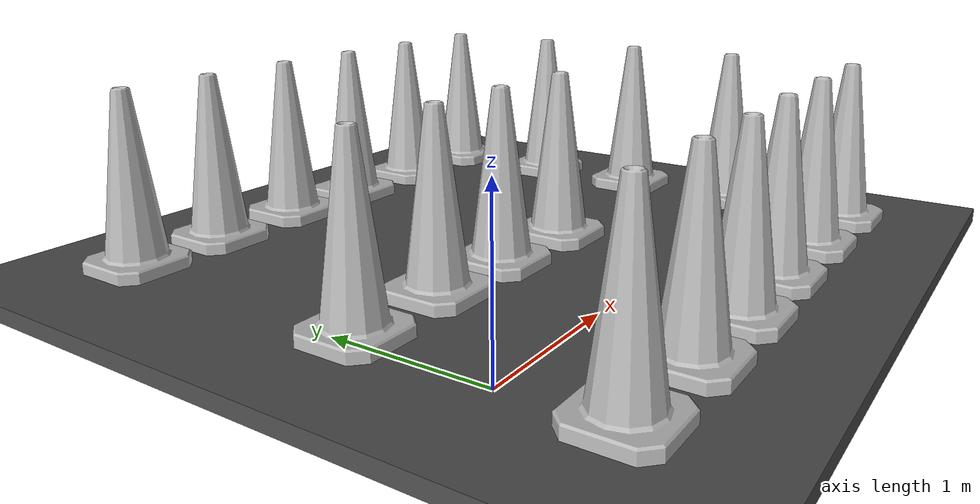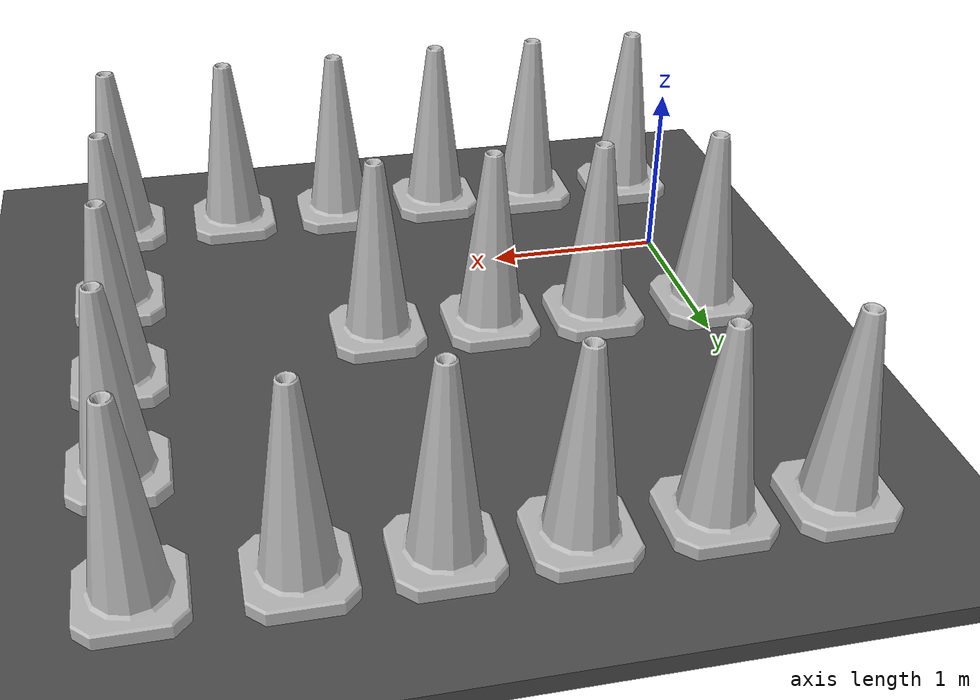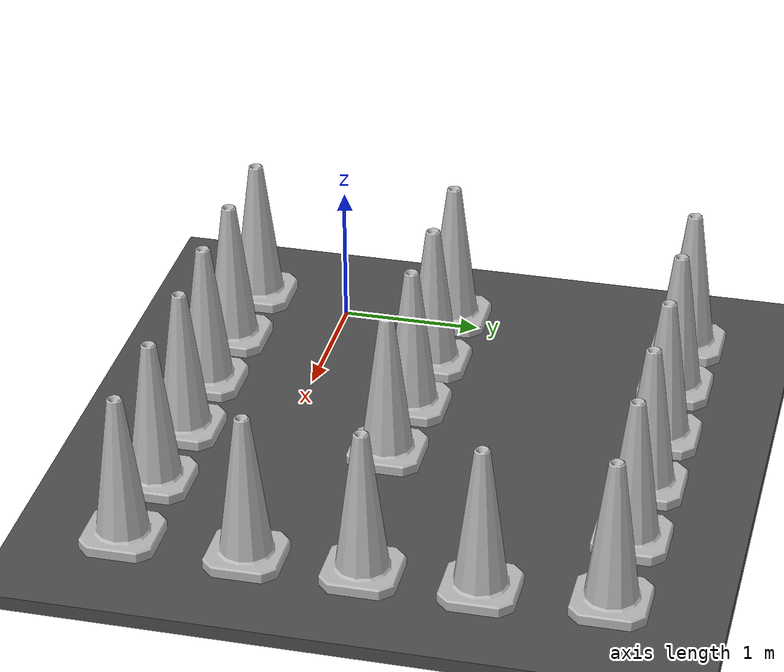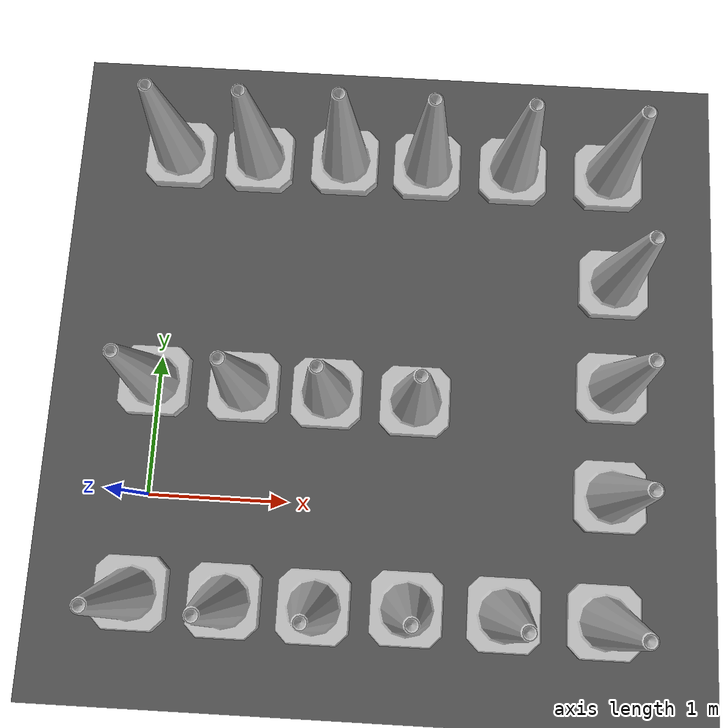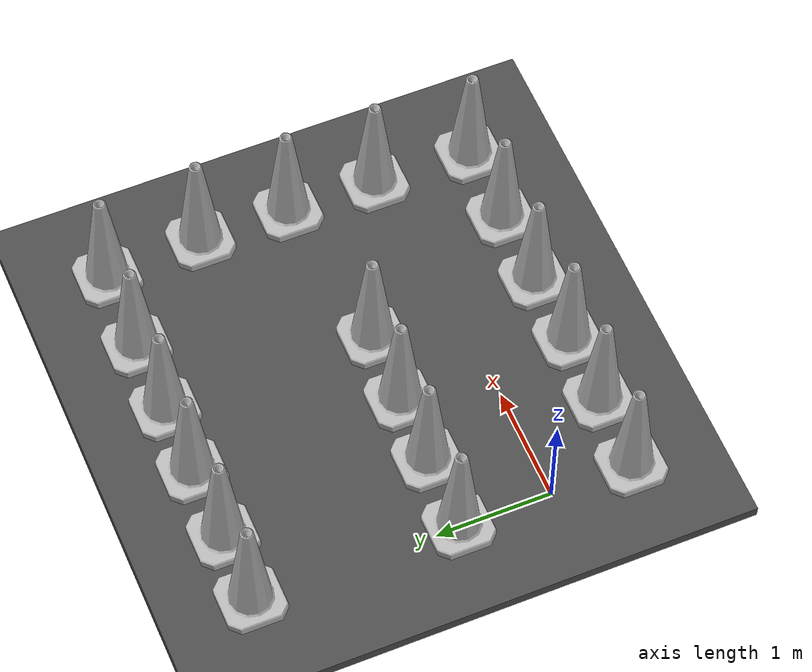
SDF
<sdf version="1.6">
 <world name="default">
  <light name="sun" type="directional">
   <pose>0 0 10 0 -0 0</pose>
   <diffuse>0.8 0.8 0.8 1</diffuse>
   <specular>0.2 0.2 0.2 1</specular>
   <attenuation>
    <range>1000</range>
    <constant>0.9</constant>
    <linear>0.01</linear>
    <quadratic>0.001</quadratic>
   </attenuation>
   <direction>-0.5 0.1 -0.9</direction>
  </light>
  <model name="ground_plane">
   <static>1</static>
   <link name="link">
    <collision name="collision">
     <geometry><plane><normal>0 0 1</normal><size>100 100</size></plane></geometry>
     <surface>
      <contact><collide_bitmask>65535</collide_bitmask></contact>
      <friction><ode><mu>100</mu><mu2>50</mu2></ode></friction>
     </surface>
    </collision>
    <visual name="visual">
     <cast_shadows>0</cast_shadows>
     <geometry><plane><normal>0 0 1</normal><size>100 100</size></plane></geometry>
     <material>
      <script><uri>file://media/materials/scripts/gazebo.material</uri><name>Gazebo/Grey</name></script>
     </material>
    </visual>
   </link>
  </model>
  <gravity>0 0 -9.8</gravity>
  <magnetic_field>6e-06 2.3e-05 -4.2e-05</magnetic_field>
  <atmosphere type="adiabatic"/>
  <physics name="default_physics" default="0" type="ode">
   <max_step_size>0.001</max_step_size>
   <real_time_factor>1</real_time_factor>
   <real_time_update_rate>1000</real_time_update_rate>
  </physics>
  <scene><ambient>0.4 0.4 0.4 1</ambient><background>0.7 0.7 0.7 1</background><shadows>1</shadows></scene>
  <audio><device>default</device></audio>
  <spherical_coordinates>
   <surface_model>EARTH_WGS84</surface_model>
   <latitude_deg>0</latitude_deg>
   <longitude_deg>0</longitude_deg>
   <elevation>0</elevation>
   <heading_deg>0</heading_deg>
  </spherical_coordinates>
  <model name="asphalt_plane">
   <static>1</static>
   <link name="link">
    <collision name="collision"><geometry><box><size>20 20 0.1</size></box></geometry></collision>
    <visual name="visual">
     <cast_shadows>0</cast_shadows>
     <geometry><box><size>20 20 0.1</size></box></geometry>
     <material>
      <script>
       <uri>model://asphalt_plane/materials/scripts</uri>
       <uri>model://asphalt_plane/materials/textures</uri>
       <name>vrc/asphalt</name>
      </script>
     </material>
    </visual>
   </link>
   <pose>-0.576834 -0.025639 0 0 -0 0</pose>
  </model>
  <model name="Construction Cone">
   <link name="link">
    <collision name="collision">
     <geometry>
      <mesh><scale>10 10 10</scale><uri>model://construction_cone/meshes/construction_cone.dae</uri></mesh>
     </geometry>
    </collision>
    <visual name="visual">
     <geometry>
      <mesh><scale>10 10 10</scale><uri>model://construction_cone/meshes/construction_cone.dae</uri></mesh>
     </geometry>
    </visual>
    <inertial>
     <inertia><ixx>1</ixx><ixy>0</ixy><ixz>0</ixz><iyy>1</iyy><iyz>0</iyz><izz>1</izz></inertia>
     <mass>1</mass>
    </inertial>
   </link>
   <pose>0.62029 -0.696837 0.05 0 -0 0</pose>
  </model>
  <model name="Construction Cone_clone">
   <link name="link">
    <collision name="collision">
     <geometry>
      <mesh><scale>10 10 10</scale><uri>model://construction_cone/meshes/construction_cone.dae</uri></mesh>
     </geometry>
    </collision>
    <visual name="visual">
     <geometry>
      <mesh><scale>10 10 10</scale><uri>model://construction_cone/meshes/construction_cone.dae</uri></mesh>
     </geometry>
    </visual>
    <inertial>
     <inertia><ixx>1</ixx><ixy>0</ixy><ixz>0</ixz><iyy>1</iyy><iyz>0</iyz><izz>1</izz></inertia>
     <mass>1</mass>
    </inertial>
   </link>
   <pose>1.24323 -0.703701 0.050001 1e-06 -2e-06 -0</pose>
  </model>
  <model name="Construction Cone_clone_0">
   <link name="link">
    <collision name="collision">
     <geometry>
      <mesh><scale>10 10 10</scale><uri>model://construction_cone/meshes/construction_cone.dae</uri></mesh>
     </geometry>
    </collision>
    <visual name="visual">
     <geometry>
      <mesh><scale>10 10 10</scale><uri>model://construction_cone/meshes/construction_cone.dae</uri></mesh>
     </geometry>
    </visual>
    <inertial>
     <inertia><ixx>1</ixx><ixy>0</ixy><ixz>0</ixz><iyy>1</iyy><iyz>0</iyz><izz>1</izz></inertia>
     <mass>1</mass>
    </inertial>
   </link>
   <pose>1.88273 -0.681437 0.049991 -2e-06 0 0</pose>
  </model>
  <model name="Construction Cone_clone_1">
   <link name="link">
    <collision name="collision">
     <geometry>
      <mesh><scale>10 10 10</scale><uri>model://construction_cone/meshes/construction_cone.dae</uri></mesh>
     </geometry>
    </collision>
    <visual name="visual">
     <geometry>
      <mesh><scale>10 10 10</scale><uri>model://construction_cone/meshes/construction_cone.dae</uri></mesh>
     </geometry>
    </visual>
    <inertial>
     <inertia><ixx>1</ixx><ixy>0</ixy><ixz>0</ixz><iyy>1</iyy><iyz>0</iyz><izz>1</izz></inertia>
     <mass>1</mass>
    </inertial>
   </link>
   <pose>-0.029949 -0.678955 0.049999 -3e-06 1e-06 0</pose>
  </model>
  <model name="Construction Cone_clone_2">
   <link name="link">
    <collision name="collision">
     <geometry>
      <mesh><scale>10 10 10</scale><uri>model://construction_cone/meshes/construction_cone.dae</uri></mesh>
     </geometry>
    </collision>
    <visual name="visual">
     <geometry>
      <mesh><scale>10 10 10</scale><uri>model://construction_cone/meshes/construction_cone.dae</uri></mesh>
     </geometry>
    </visual>
    <inertial>
     <inertia><ixx>1</ixx><ixy>0</ixy><ixz>0</ixz><iyy>1</iyy><iyz>0</iyz><izz>1</izz></inertia>
     <mass>1</mass>
    </inertial>
   </link>
   <pose>2.55565 -0.684965 0.05 1e-06 -0 0</pose>
  </model>
  <model name="Construction Cone_clone_1_clone">
   <link name="link">
    <collision name="collision">
     <geometry>
      <mesh><scale>10 10 10</scale><uri>model://construction_cone/meshes/construction_cone.dae</uri></mesh>
     </geometry>
    </collision>
    <visual name="visual">
     <geometry>
      <mesh><scale>10 10 10</scale><uri>model://construction_cone/meshes/construction_cone.dae</uri></mesh>
     </geometry>
    </visual>
    <inertial>
     <inertia><ixx>1</ixx><ixy>0</ixy><ixz>0</ixz><iyy>1</iyy><iyz>0</iyz><izz>1</izz></inertia>
     <mass>1</mass>
    </inertial>
   </link>
   <pose>-0.017061 0.815225 0.05 0 -0 0</pose>
  </model>
  <model name="Construction Cone_clone_1_clone_0">
   <link name="link">
    <collision name="collision">
     <geometry>
      <mesh><scale>10 10 10</scale><uri>model://construction_cone/meshes/construction_cone.dae</uri></mesh>
     </geometry>
    </collision>
    <visual name="visual">
     <geometry>
      <mesh><scale>10 10 10</scale><uri>model://construction_cone/meshes/construction_cone.dae</uri></mesh>
     </geometry>
    </visual>
    <inertial>
     <inertia><ixx>1</ixx><ixy>0</ixy><ixz>0</ixz><iyy>1</iyy><iyz>0</iyz><izz>1</izz></inertia>
     <mass>1</mass>
    </inertial>
   </link>
   <pose>0.634199 0.805261 0.05 -1e-06 -1e-06 0</pose>
  </model>
  <model name="Construction Cone_clone_1_clone_1">
   <link name="link">
    <collision name="collision">
     <geometry>
      <mesh><scale>10 10 10</scale><uri>model://construction_cone/meshes/construction_cone.dae</uri></mesh>
     </geometry>
    </collision>
    <visual name="visual">
     <geometry>
      <mesh><scale>10 10 10</scale><uri>model://construction_cone/meshes/construction_cone.dae</uri></mesh>
     </geometry>
    </visual>
    <inertial>
     <inertia><ixx>1</ixx><ixy>0</ixy><ixz>0</ixz><iyy>1</iyy><iyz>0</iyz><izz>1</izz></inertia>
     <mass>1</mass>
    </inertial>
   </link>
   <pose>1.2368 0.789309 0.05 1e-06 1e-06 0</pose>
  </model>
  <model name="Construction Cone_clone_1_clone_2">
   <link name="link">
    <collision name="collision">
     <geometry>
      <mesh><scale>10 10 10</scale><uri>model://construction_cone/meshes/construction_cone.dae</uri></mesh>
     </geometry>
    </collision>
    <visual name="visual">
     <geometry>
      <mesh><scale>10 10 10</scale><uri>model://construction_cone/meshes/construction_cone.dae</uri></mesh>
     </geometry>
    </visual>
    <inertial>
     <inertia><ixx>1</ixx><ixy>0</ixy><ixz>0</ixz><iyy>1</iyy><iyz>0</iyz><izz>1</izz></inertia>
     <mass>1</mass>
    </inertial>
   </link>
   <pose>1.87435 0.76582 0.05 0 -0 0</pose>
  </model>
  <model name="Construction Cone_clone_1_clone_3">
   <link name="link">
    <collision name="collision">
     <geometry>
      <mesh><scale>10 10 10</scale><uri>model://construction_cone/meshes/construction_cone.dae</uri></mesh>
     </geometry>
    </collision>
    <visual name="visual">
     <geometry>
      <mesh><scale>10 10 10</scale><uri>model://construction_cone/meshes/construction_cone.dae</uri></mesh>
     </geometry>
    </visual>
    <inertial>
     <inertia><ixx>1</ixx><ixy>0</ixy><ixz>0</ixz><iyy>1</iyy><iyz>0</iyz><izz>1</izz></inertia>
     <mass>1</mass>
    </inertial>
   </link>
   <pose>3.24607 -0.694421 0.049999 -2e-06 -3e-06 0</pose>
  </model>
  <model name="Construction Cone_clone_1_clone_4">
   <link name="link">
    <collision name="collision">
     <geometry>
      <mesh><scale>10 10 10</scale><uri>model://construction_cone/meshes/construction_cone.dae</uri></mesh>
     </geometry>
    </collision>
    <visual name="visual">
     <geometry>
      <mesh><scale>10 10 10</scale><uri>model://construction_cone/meshes/construction_cone.dae</uri></mesh>
     </geometry>
    </visual>
    <inertial>
     <inertia><ixx>1</ixx><ixy>0</ixy><ixz>0</ixz><iyy>1</iyy><iyz>0</iyz><izz>1</izz></inertia>
     <mass>1</mass>
    </inertial>
   </link>
   <pose>3.28103 0.159975 0.05 1e-06 -1e-06 0</pose>
  </model>
  <model name="Construction Cone_clone_1_clone_5">
   <link name="link">
    <collision name="collision">
     <geometry>
      <mesh><scale>10 10 10</scale><uri>model://construction_cone/meshes/construction_cone.dae</uri></mesh>
     </geometry>
    </collision>
    <visual name="visual">
     <geometry>
      <mesh><scale>10 10 10</scale><uri>model://construction_cone/meshes/construction_cone.dae</uri></mesh>
     </geometry>
    </visual>
    <inertial>
     <inertia><ixx>1</ixx><ixy>0</ixy><ixz>0</ixz><iyy>1</iyy><iyz>0</iyz><izz>1</izz></inertia>
     <mass>1</mass>
    </inertial>
   </link>
   <pose>3.28932 0.939735 0.049991 -0 -0 -0</pose>
  </model>
  <model name="Construction Cone_clone_1_clone_6">
   <link name="link">
    <collision name="collision">
     <geometry>
      <mesh><scale>10 10 10</scale><uri>model://construction_cone/meshes/construction_cone.dae</uri></mesh>
     </geometry>
    </collision>
    <visual name="visual">
     <geometry>
      <mesh><scale>10 10 10</scale><uri>model://construction_cone/meshes/construction_cone.dae</uri></mesh>
     </geometry>
    </visual>
    <inertial>
     <inertia><ixx>1</ixx><ixy>0</ixy><ixz>0</ixz><iyy>1</iyy><iyz>0</iyz><izz>1</izz></inertia>
     <mass>1</mass>
    </inertial>
   </link>
   <pose>3.29892 1.72183 0.05 2e-06 -0 0</pose>
  </model>
  <model name="Construction Cone_clone_1_clone_7">
   <link name="link">
    <collision name="collision">
     <geometry>
      <mesh><scale>10 10 10</scale><uri>model://construction_cone/meshes/construction_cone.dae</uri></mesh>
     </geometry>
    </collision>
    <visual name="visual">
     <geometry>
      <mesh><scale>10 10 10</scale><uri>model://construction_cone/meshes/construction_cone.dae</uri></mesh>
     </geometry>
    </visual>
    <inertial>
     <inertia><ixx>1</ixx><ixy>0</ixy><ixz>0</ixz><iyy>1</iyy><iyz>0</iyz><izz>1</izz></inertia>
     <mass>1</mass>
    </inertial>
   </link>
   <pose>3.25351 2.56269 0.049993 -5e-06 0 0</pose>
  </model>
  <model name="Construction Cone_clone_1_clone_8">
   <link name="link">
    <collision name="collision">
     <geometry>
      <mesh><scale>10 10 10</scale><uri>model://construction_cone/meshes/construction_cone.dae</uri></mesh>
     </geometry>
    </collision>
    <visual name="visual">
     <geometry>
      <mesh><scale>10 10 10</scale><uri>model://construction_cone/meshes/construction_cone.dae</uri></mesh>
     </geometry>
    </visual>
    <inertial>
     <inertia><ixx>1</ixx><ixy>0</ixy><ixz>0</ixz><iyy>1</iyy><iyz>0</iyz><izz>1</izz></inertia>
     <mass>1</mass>
    </inertial>
   </link>
   <pose>2.53139 2.57476 0.05 0 -0 0</pose>
  </model>
  <model name="Construction Cone_clone_1_clone_9">
   <link name="link">
    <collision name="collision">
     <geometry>
      <mesh><scale>10 10 10</scale><uri>model://construction_cone/meshes/construction_cone.dae</uri></mesh>
     </geometry>
    </collision>
    <visual name="visual">
     <geometry>
      <mesh><scale>10 10 10</scale><uri>model://construction_cone/meshes/construction_cone.dae</uri></mesh>
     </geometry>
    </visual>
    <inertial>
     <inertia><ixx>1</ixx><ixy>0</ixy><ixz>0</ixz><iyy>1</iyy><iyz>0</iyz><izz>1</izz></inertia>
     <mass>1</mass>
    </inertial>
   </link>
   <pose>1.87934 2.57426 0.049993 -2e-06 1e-06 -0</pose>
  </model>
  <model name="Construction Cone_clone_1_clone_10">
   <link name="link">
    <collision name="collision">
     <geometry>
      <mesh><scale>10 10 10</scale><uri>model://construction_cone/meshes/construction_cone.dae</uri></mesh>
     </geometry>
    </collision>
    <visual name="visual">
     <geometry>
      <mesh><scale>10 10 10</scale><uri>model://construction_cone/meshes/construction_cone.dae</uri></mesh>
     </geometry>
    </visual>
    <inertial>
     <inertia><ixx>1</ixx><ixy>0</ixy><ixz>0</ixz><iyy>1</iyy><iyz>0</iyz><izz>1</izz></inertia>
     <mass>1</mass>
    </inertial>
   </link>
   <pose>1.25489 2.58005 0.05 0 1e-06 0</pose>
  </model>
  <model name="Construction Cone_clone_1_clone_11">
   <link name="link">
    <collision name="collision">
     <geometry>
      <mesh><scale>10 10 10</scale><uri>model://construction_cone/meshes/construction_cone.dae</uri></mesh>
     </geometry>
    </collision>
    <visual name="visual">
     <geometry>
      <mesh><scale>10 10 10</scale><uri>model://construction_cone/meshes/construction_cone.dae</uri></mesh>
     </geometry>
    </visual>
    <inertial>
     <inertia><ixx>1</ixx><ixy>0</ixy><ixz>0</ixz><iyy>1</iyy><iyz>0</iyz><izz>1</izz></inertia>
     <mass>1</mass>
    </inertial>
   </link>
   <pose>0.607586 2.56728 0.049999 1e-06 -2e-06 -0</pose>
  </model>
  <model name="Construction Cone_clone_1_clone_12">
   <link name="link">
    <collision name="collision">
     <geometry>
      <mesh><scale>10 10 10</scale><uri>model://construction_cone/meshes/construction_cone.dae</uri></mesh>
     </geometry>
    </collision>
    <visual name="visual">
     <geometry>
      <mesh><scale>10 10 10</scale><uri>model://construction_cone/meshes/construction_cone.dae</uri></mesh>
     </geometry>
    </visual>
    <inertial>
     <inertia><ixx>1</ixx><ixy>0</ixy><ixz>0</ixz><iyy>1</iyy><iyz>0</iyz><izz>1</izz></inertia>
     <mass>1</mass>
    </inertial>
   </link>
   <pose>0.000964 2.57354 0.05 0 -0 0</pose>
  </model>
 </world>
</sdf>
